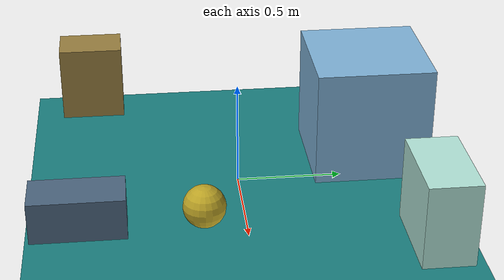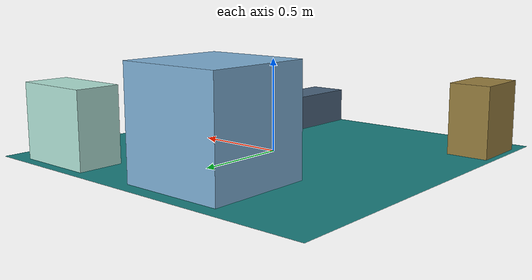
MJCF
<mujoco>
   <asset>
<texture type="skybox" builtin="gradient" rgb1="0.1 0.7 0.5" rgb2="0.1 0.4 0.1" width="256" height="256"/>
<texture name="checker_0" builtin="checker" type="2d" rgb1="0.9 0.9 0.3" rgb2="0.6 0.4 0.0" width="200" height="200"/>
<texture name="gradient_1" builtin="gradient" rgb1="0.8 0.9 0.8" rgb2="0.6 0.9 0.9" width="200" height="200"/>
<texture name="checker_2" builtin="checker" type="2d" rgb1="0.1 0.8 0.7" rgb2="0.9 0.6 1.0" width="200" height="200"/>
<texture name="flat_3" builtin="flat" rgb1="0.3 0.4 0.5" rgb2="0.3 0.4 0.5"  width="200" height="200"/>
<texture name="gradient_4" builtin="gradient" rgb1="0.3 0.3 0.2" rgb2="0.9 0.7 0.3" width="200" height="200"/><material name="checker_0_mat" reflectance="0" texrepeat="3 3" texture="checker_0" texuniform="false" />
<material name="gradient_1_mat" reflectance="0" texture="gradient_1" texuniform="true"/>
<material name="checker_2_mat" reflectance="0" texrepeat="4 4" texture="checker_2" texuniform="false" />
<material name="flat_3_mat" reflectance="0" texture="flat_3" texuniform="true"/>
<material name="gradient_4_mat" reflectance="0" texture="gradient_4" texuniform="true"/>
   </asset>

   <worldbody>
      <light diffuse=".9 .9 .9" pos="0 0 3" dir="0 0 -1"/>
     <geom type="plane" size="1 1 0.1" rgba="0.1 0.5 0.5 1"/>
<geom type="sphere" pos="0.39 -0.19 0.1" size="0.1 0.1 0.1" material="checker_0_mat" />
<geom type="box" pos="0.62 0.83 0.2" size="0.22 0.12 0.2" material="gradient_1_mat" />
<geom type="box" pos="-0.21 0.65 0.28" size="0.28 0.28 0.28" material="checker_2_mat" />
<geom type="box" pos="0.36 -0.76 0.1" size="0.11 0.22 0.1" material="flat_3_mat" />
<geom type="box" pos="-0.86 -0.7 0.19" size="0.11 0.16 0.19" material="gradient_4_mat" /><camera euler="60 0 180" fovy="60" name="camera_a" pos="0 -1.5 1"></camera>   </worldbody>
</mujoco>
